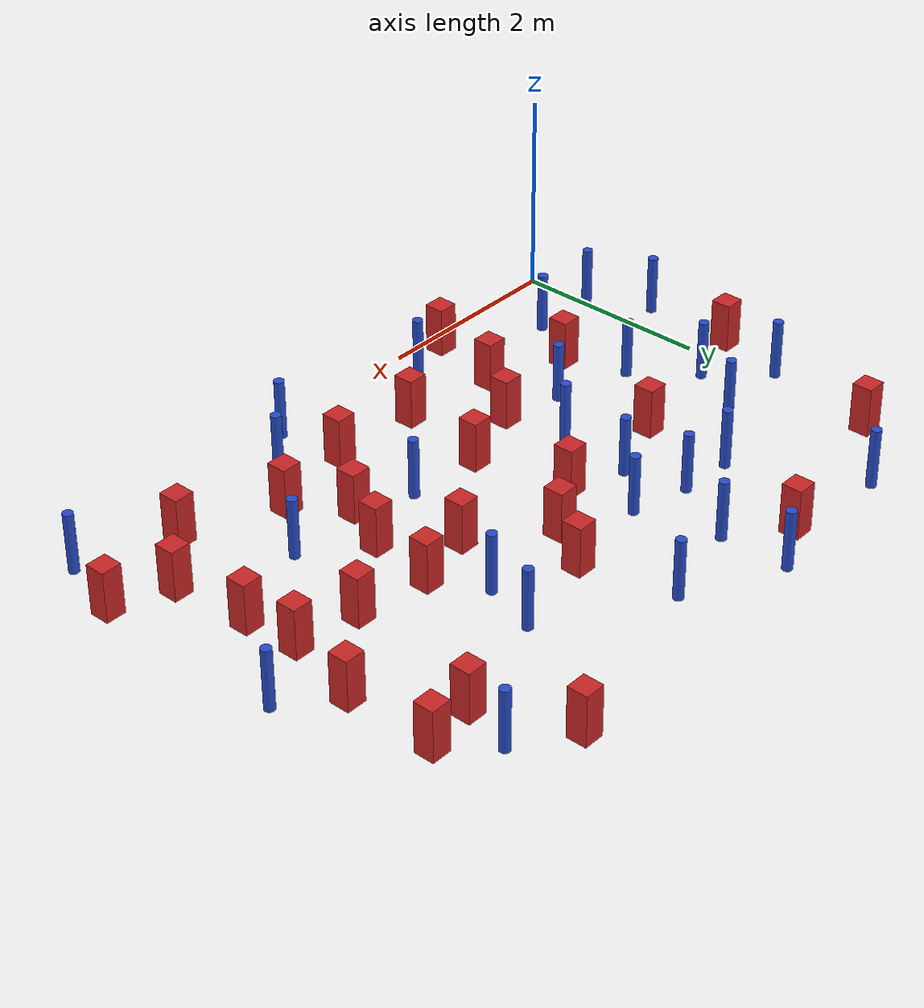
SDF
<sdf version="1.6">
 <model name="dense_92">
  <model name="pole_obstacle0">
   <static>true</static>
   <pose>3.60466851561 1.68815244617 -3.09024884793e-07 -7.19054271912e-07 -2.11315075122e-07 -1.93935509259e-07</pose>
   <link name="link">
    <pose>0 0 0.3 0 -0 0</pose>
    <inertial>
     <mass>1</mass>
     <inertia><ixx>0.145833</ixx><ixy>0</ixy><ixz>0</ixz><iyy>0.145833</iyy><iyz>0</iyz><izz>0.125</izz></inertia>
    </inertial>
    <collision name="collision">
     <geometry><cylinder><radius>0.05</radius><length>.6</length></cylinder></geometry>
    </collision>
    <visual name="visual">
     <geometry><cylinder><radius>0.05</radius><length>.6</length></cylinder></geometry>
     <material>
      <script><name>Gazebo/Blue</name><uri>file://media/materials/scripts/gazebo.material</uri></script>
     </material>
    </visual>
   </link>
  </model>
  <model name="square_post_obstacle0">
   <static>true</static>
   <pose>0.999847726643 1.23337984124 -4.36207812815e-07 3.75137919937e-06 9.77721102514e-07 2.47381364184e-05</pose>
   <link name="link">
    <pose>0 0 0.25 0 -0 0</pose>
    <inertial>
     <mass>100</mass>
     <inertia>
      <ixx>0.166667</ixx>
      <ixy>0</ixy>
      <ixz>0</ixz>
      <iyy>0.166667</iyy>
      <iyz>0</iyz>
      <izz>0.166667</izz>
     </inertia>
    </inertial>
    <collision name="collision"><geometry><box><size>.2 .2 .5</size></box></geometry></collision>
    <visual name="visual">
     <geometry><box><size>.2 .2 .5</size></box></geometry>
     <material>
      <script><name>Gazebo/Red</name><uri>file://media/materials/scripts/gazebo.material</uri></script>
     </material>
    </visual>
   </link>
  </model>
  <model name="pole_obstacle2">
   <static>true</static>
   <pose>0.819496799136 4.62784441274 -3.09024884793e-07 -7.19054271912e-07 -2.11315075129e-07 -1.93935509261e-07</pose>
   <link name="link">
    <pose>0 0 0.3 0 -0 0</pose>
    <inertial>
     <mass>1</mass>
     <inertia><ixx>0.145833</ixx><ixy>0</ixy><ixz>0</ixz><iyy>0.145833</iyy><iyz>0</iyz><izz>0.125</izz></inertia>
    </inertial>
    <collision name="collision">
     <geometry><cylinder><radius>0.05</radius><length>.6</length></cylinder></geometry>
    </collision>
    <visual name="visual">
     <geometry><cylinder><radius>0.05</radius><length>.6</length></cylinder></geometry>
     <material>
      <script><name>Gazebo/Blue</name><uri>file://media/materials/scripts/gazebo.material</uri></script>
     </material>
    </visual>
   </link>
  </model>
  <model name="square_post_obstacle3">
   <static>true</static>
   <pose>3.87906195297 2.48973368131 -4.36207812815e-07 3.75137919937e-06 9.77721102514e-07 2.47381364184e-05</pose>
   <link name="link">
    <pose>0 0 0.25 0 -0 0</pose>
    <inertial>
     <mass>100</mass>
     <inertia>
      <ixx>0.166667</ixx>
      <ixy>0</ixy>
      <ixz>0</ixz>
      <iyy>0.166667</iyy>
      <iyz>0</iyz>
      <izz>0.166667</izz>
     </inertia>
    </inertial>
    <collision name="collision"><geometry><box><size>.2 .2 .5</size></box></geometry></collision>
    <visual name="visual">
     <geometry><box><size>.2 .2 .5</size></box></geometry>
     <material>
      <script><name>Gazebo/Red</name><uri>file://media/materials/scripts/gazebo.material</uri></script>
     </material>
    </visual>
   </link>
  </model>
  <model name="square_post_obstacle4">
   <static>true</static>
   <pose>5.19409219351 2.53887665867 -4.36207812815e-07 3.75137919937e-06 9.77721102514e-07 2.47381364184e-05</pose>
   <link name="link">
    <pose>0 0 0.25 0 -0 0</pose>
    <inertial>
     <mass>100</mass>
     <inertia>
      <ixx>0.166667</ixx>
      <ixy>0</ixy>
      <ixz>0</ixz>
      <iyy>0.166667</iyy>
      <iyz>0</iyz>
      <izz>0.166667</izz>
     </inertia>
    </inertial>
    <collision name="collision"><geometry><box><size>.2 .2 .5</size></box></geometry></collision>
    <visual name="visual">
     <geometry><box><size>.2 .2 .5</size></box></geometry>
     <material>
      <script><name>Gazebo/Red</name><uri>file://media/materials/scripts/gazebo.material</uri></script>
     </material>
    </visual>
   </link>
  </model>
  <model name="square_post_obstacle12">
   <static>true</static>
   <pose>5.85844302051 1.91838656615 -4.36207812815e-07 3.75137919937e-06 9.77721102514e-07 2.47381364184e-05</pose>
   <link name="link">
    <pose>0 0 0.25 0 -0 0</pose>
    <inertial>
     <mass>100</mass>
     <inertia>
      <ixx>0.166667</ixx>
      <ixy>0</ixy>
      <ixz>0</ixz>
      <iyy>0.166667</iyy>
      <iyz>0</iyz>
      <izz>0.166667</izz>
     </inertia>
    </inertial>
    <collision name="collision"><geometry><box><size>.2 .2 .5</size></box></geometry></collision>
    <visual name="visual">
     <geometry><box><size>.2 .2 .5</size></box></geometry>
     <material>
      <script><name>Gazebo/Red</name><uri>file://media/materials/scripts/gazebo.material</uri></script>
     </material>
    </visual>
   </link>
  </model>
  <model name="square_post_obstacle13">
   <static>true</static>
   <pose>2.64534605135 2.66495597254 -4.36207812815e-07 3.75137919937e-06 9.77721102514e-07 2.47381364184e-05</pose>
   <link name="link">
    <pose>0 0 0.25 0 -0 0</pose>
    <inertial>
     <mass>100</mass>
     <inertia>
      <ixx>0.166667</ixx>
      <ixy>0</ixy>
      <ixz>0</ixz>
      <iyy>0.166667</iyy>
      <iyz>0</iyz>
      <izz>0.166667</izz>
     </inertia>
    </inertial>
    <collision name="collision"><geometry><box><size>.2 .2 .5</size></box></geometry></collision>
    <visual name="visual">
     <geometry><box><size>.2 .2 .5</size></box></geometry>
     <material>
      <script><name>Gazebo/Red</name><uri>file://media/materials/scripts/gazebo.material</uri></script>
     </material>
    </visual>
   </link>
  </model>
  <model name="square_post_obstacle15">
   <static>true</static>
   <pose>1.76671340534 0.958167843128 -4.36207812815e-07 3.75137919937e-06 9.77721102514e-07 2.47381364184e-05</pose>
   <link name="link">
    <pose>0 0 0.25 0 -0 0</pose>
    <inertial>
     <mass>100</mass>
     <inertia>
      <ixx>0.166667</ixx>
      <ixy>0</ixy>
      <ixz>0</ixz>
      <iyy>0.166667</iyy>
      <iyz>0</iyz>
      <izz>0.166667</izz>
     </inertia>
    </inertial>
    <collision name="collision"><geometry><box><size>.2 .2 .5</size></box></geometry></collision>
    <visual name="visual">
     <geometry><box><size>.2 .2 .5</size></box></geometry>
     <material>
      <script><name>Gazebo/Red</name><uri>file://media/materials/scripts/gazebo.material</uri></script>
     </material>
    </visual>
   </link>
  </model>
  <model name="pole_obstacle22">
   <static>true</static>
   <pose>5.62345927579 4.4928146941 -3.09024884793e-07 -7.19054271911e-07 -2.1131507516e-07 -1.93935509277e-07</pose>
   <link name="link">
    <pose>0 0 0.3 0 -0 0</pose>
    <inertial>
     <mass>1</mass>
     <inertia><ixx>0.145833</ixx><ixy>0</ixy><ixz>0</ixz><iyy>0.145833</iyy><iyz>0</iyz><izz>0.125</izz></inertia>
    </inertial>
    <collision name="collision">
     <geometry><cylinder><radius>0.05</radius><length>.6</length></cylinder></geometry>
    </collision>
    <visual name="visual">
     <geometry><cylinder><radius>0.05</radius><length>.6</length></cylinder></geometry>
     <material>
      <script><name>Gazebo/Blue</name><uri>file://media/materials/scripts/gazebo.material</uri></script>
     </material>
    </visual>
   </link>
  </model>
  <model name="pole_obstacle32">
   <static>true</static>
   <pose>2.02491180352 2.1015205341 -3.09024884793e-07 -7.19054271912e-07 -2.11315075149e-07 -1.93935509273e-07</pose>
   <link name="link">
    <pose>0 0 0.3 0 -0 0</pose>
    <inertial>
     <mass>1</mass>
     <inertia><ixx>0.145833</ixx><ixy>0</ixy><ixz>0</ixz><iyy>0.145833</iyy><iyz>0</iyz><izz>0.125</izz></inertia>
    </inertial>
    <collision name="collision">
     <geometry><cylinder><radius>0.05</radius><length>.6</length></cylinder></geometry>
    </collision>
    <visual name="visual">
     <geometry><cylinder><radius>0.05</radius><length>.6</length></cylinder></geometry>
     <material>
      <script><name>Gazebo/Blue</name><uri>file://media/materials/scripts/gazebo.material</uri></script>
     </material>
    </visual>
   </link>
  </model>
  <model name="pole_obstacle34">
   <static>true</static>
   <pose>4.11600173302 0.507920673641 -3.09024884793e-07 -7.19054271912e-07 -2.11315075121e-07 -1.93935509259e-07</pose>
   <link name="link">
    <pose>0 0 0.3 0 -0 0</pose>
    <inertial>
     <mass>1</mass>
     <inertia><ixx>0.145833</ixx><ixy>0</ixy><ixz>0</ixz><iyy>0.145833</iyy><iyz>0</iyz><izz>0.125</izz></inertia>
    </inertial>
    <collision name="collision">
     <geometry><cylinder><radius>0.05</radius><length>.6</length></cylinder></geometry>
    </collision>
    <visual name="visual">
     <geometry><cylinder><radius>0.05</radius><length>.6</length></cylinder></geometry>
     <material>
      <script><name>Gazebo/Blue</name><uri>file://media/materials/scripts/gazebo.material</uri></script>
     </material>
    </visual>
   </link>
  </model>
  <model name="pole_obstacle35">
   <static>true</static>
   <pose>6.30162977022 0.28714621884 -3.09024884793e-07 -7.19054271912e-07 -2.11315075135e-07 -1.93935509265e-07</pose>
   <link name="link">
    <pose>0 0 0.3 0 -0 0</pose>
    <inertial>
     <mass>1</mass>
     <inertia><ixx>0.145833</ixx><ixy>0</ixy><ixz>0</ixz><iyy>0.145833</iyy><iyz>0</iyz><izz>0.125</izz></inertia>
    </inertial>
    <collision name="collision">
     <geometry><cylinder><radius>0.05</radius><length>.6</length></cylinder></geometry>
    </collision>
    <visual name="visual">
     <geometry><cylinder><radius>0.05</radius><length>.6</length></cylinder></geometry>
     <material>
      <script><name>Gazebo/Blue</name><uri>file://media/materials/scripts/gazebo.material</uri></script>
     </material>
    </visual>
   </link>
  </model>
  <model name="pole_obstacle38">
   <static>true</static>
   <pose>-0.0360535526519 0.674733364668 -3.09024884793e-07 -7.19054271912e-07 -2.1131507514e-07 -1.93935509268e-07</pose>
   <link name="link">
    <pose>0 0 0.3 0 -0 0</pose>
    <inertial>
     <mass>1</mass>
     <inertia><ixx>0.145833</ixx><ixy>0</ixy><ixz>0</ixz><iyy>0.145833</iyy><iyz>0</iyz><izz>0.125</izz></inertia>
    </inertial>
    <collision name="collision">
     <geometry><cylinder><radius>0.05</radius><length>.6</length></cylinder></geometry>
    </collision>
    <visual name="visual">
     <geometry><cylinder><radius>0.05</radius><length>.6</length></cylinder></geometry>
     <material>
      <script><name>Gazebo/Blue</name><uri>file://media/materials/scripts/gazebo.material</uri></script>
     </material>
    </visual>
   </link>
  </model>
  <model name="pole_obstacle41">
   <static>true</static>
   <pose>-0.336554518417 1.26419817546 -3.09024884793e-07 -7.19054271912e-07 -2.11315075135e-07 -1.93935509265e-07</pose>
   <link name="link">
    <pose>0 0 0.3 0 -0 0</pose>
    <inertial>
     <mass>1</mass>
     <inertia><ixx>0.145833</ixx><ixy>0</ixy><ixz>0</ixz><iyy>0.145833</iyy><iyz>0</iyz><izz>0.125</izz></inertia>
    </inertial>
    <collision name="collision">
     <geometry><cylinder><radius>0.05</radius><length>.6</length></cylinder></geometry>
    </collision>
    <visual name="visual">
     <geometry><cylinder><radius>0.05</radius><length>.6</length></cylinder></geometry>
     <material>
      <script><name>Gazebo/Blue</name><uri>file://media/materials/scripts/gazebo.material</uri></script>
     </material>
    </visual>
   </link>
  </model>
  <model name="pole_obstacle43">
   <static>true</static>
   <pose>0.717372340981 2.98848043081 -3.09024884793e-07 -7.19054271912e-07 -2.11315075129e-07 -1.93935509263e-07</pose>
   <link name="link">
    <pose>0 0 0.3 0 -0 0</pose>
    <inertial>
     <mass>1</mass>
     <inertia><ixx>0.145833</ixx><ixy>0</ixy><ixz>0</ixz><iyy>0.145833</iyy><iyz>0</iyz><izz>0.125</izz></inertia>
    </inertial>
    <collision name="collision">
     <geometry><cylinder><radius>0.05</radius><length>.6</length></cylinder></geometry>
    </collision>
    <visual name="visual">
     <geometry><cylinder><radius>0.05</radius><length>.6</length></cylinder></geometry>
     <material>
      <script><name>Gazebo/Blue</name><uri>file://media/materials/scripts/gazebo.material</uri></script>
     </material>
    </visual>
   </link>
  </model>
  <model name="square_post_obstacle39">
   <static>true</static>
   <pose>1.59438663737 0.182219720311 -4.36207812815e-07 3.75137919937e-06 9.77721102514e-07 2.47381364184e-05</pose>
   <link name="link">
    <pose>0 0 0.25 0 -0 0</pose>
    <inertial>
     <mass>100</mass>
     <inertia>
      <ixx>0.166667</ixx>
      <ixy>0</ixy>
      <ixz>0</ixz>
      <iyy>0.166667</iyy>
      <iyz>0</iyz>
      <izz>0.166667</izz>
     </inertia>
    </inertial>
    <collision name="collision"><geometry><box><size>.2 .2 .5</size></box></geometry></collision>
    <visual name="visual">
     <geometry><box><size>.2 .2 .5</size></box></geometry>
     <material>
      <script><name>Gazebo/Red</name><uri>file://media/materials/scripts/gazebo.material</uri></script>
     </material>
    </visual>
   </link>
  </model>
  <model name="square_post_obstacle43">
   <static>true</static>
   <pose>6.00257894294 4.09511672997 -4.36207812815e-07 3.75137919937e-06 9.77721102514e-07 2.47381364184e-05</pose>
   <link name="link">
    <pose>0 0 0.25 0 -0 0</pose>
    <inertial>
     <mass>100</mass>
     <inertia>
      <ixx>0.166667</ixx>
      <ixy>0</ixy>
      <ixz>0</ixz>
      <iyy>0.166667</iyy>
      <iyz>0</iyz>
      <izz>0.166667</izz>
     </inertia>
    </inertial>
    <collision name="collision"><geometry><box><size>.2 .2 .5</size></box></geometry></collision>
    <visual name="visual">
     <geometry><box><size>.2 .2 .5</size></box></geometry>
     <material>
      <script><name>Gazebo/Red</name><uri>file://media/materials/scripts/gazebo.material</uri></script>
     </material>
    </visual>
   </link>
  </model>
  <model name="pole_obstacle59">
   <static>true</static>
   <pose>2.0804047754 0.33294601448 -3.09024884793e-07 -7.19054271912e-07 -2.1131507512e-07 -1.93935509259e-07</pose>
   <link name="link">
    <pose>0 0 0.3 0 -0 0</pose>
    <inertial>
     <mass>1</mass>
     <inertia><ixx>0.145833</ixx><ixy>0</ixy><ixz>0</ixz><iyy>0.145833</iyy><iyz>0</iyz><izz>0.125</izz></inertia>
    </inertial>
    <collision name="collision">
     <geometry><cylinder><radius>0.05</radius><length>.6</length></cylinder></geometry>
    </collision>
    <visual name="visual">
     <geometry><cylinder><radius>0.05</radius><length>.6</length></cylinder></geometry>
     <material>
      <script><name>Gazebo/Blue</name><uri>file://media/materials/scripts/gazebo.material</uri></script>
     </material>
    </visual>
   </link>
  </model>
  <model name="square_post_obstacle49">
   <static>true</static>
   <pose>0.0841019868554 4.06808306231 -4.36207812815e-07 3.75137919937e-06 9.77721102514e-07 2.47381364184e-05</pose>
   <link name="link">
    <pose>0 0 0.25 0 -0 0</pose>
    <inertial>
     <mass>100</mass>
     <inertia>
      <ixx>0.166667</ixx>
      <ixy>0</ixy>
      <ixz>0</ixz>
      <iyy>0.166667</iyy>
      <iyz>0</iyz>
      <izz>0.166667</izz>
     </inertia>
    </inertial>
    <collision name="collision"><geometry><box><size>.2 .2 .5</size></box></geometry></collision>
    <visual name="visual">
     <geometry><box><size>.2 .2 .5</size></box></geometry>
     <material>
      <script><name>Gazebo/Red</name><uri>file://media/materials/scripts/gazebo.material</uri></script>
     </material>
    </visual>
   </link>
  </model>
  <model name="square_post_obstacle63">
   <static>true</static>
   <pose>5.93387154902 1.15310117434 -4.36207812815e-07 3.75137919937e-06 9.77721102514e-07 2.47381364184e-05</pose>
   <link name="link">
    <pose>0 0 0.25 0 -0 0</pose>
    <inertial>
     <mass>100</mass>
     <inertia>
      <ixx>0.166667</ixx>
      <ixy>0</ixy>
      <ixz>0</ixz>
      <iyy>0.166667</iyy>
      <iyz>0</iyz>
      <izz>0.166667</izz>
     </inertia>
    </inertial>
    <collision name="collision"><geometry><box><size>.2 .2 .5</size></box></geometry></collision>
    <visual name="visual">
     <geometry><box><size>.2 .2 .5</size></box></geometry>
     <material>
      <script><name>Gazebo/Red</name><uri>file://media/materials/scripts/gazebo.material</uri></script>
     </material>
    </visual>
   </link>
  </model>
  <model name="pole_obstacle76">
   <static>true</static>
   <pose>2.53124457961 3.29740542133 -3.09024884793e-07 -7.19054271912e-07 -2.11315075144e-07 -1.93935509271e-07</pose>
   <link name="link">
    <pose>0 0 0.3 0 -0 0</pose>
    <inertial>
     <mass>1</mass>
     <inertia><ixx>0.145833</ixx><ixy>0</ixy><ixz>0</ixz><iyy>0.145833</iyy><iyz>0</iyz><izz>0.125</izz></inertia>
    </inertial>
    <collision name="collision">
     <geometry><cylinder><radius>0.05</radius><length>.6</length></cylinder></geometry>
    </collision>
    <visual name="visual">
     <geometry><cylinder><radius>0.05</radius><length>.6</length></cylinder></geometry>
     <material>
      <script><name>Gazebo/Blue</name><uri>file://media/materials/scripts/gazebo.material</uri></script>
     </material>
    </visual>
   </link>
  </model>
  <model name="pole_obstacle77">
   <static>true</static>
   <pose>1.54219079102 1.61640220857 -3.09024884793e-07 -7.19054271912e-07 -2.1131507513e-07 -1.93935509263e-07</pose>
   <link name="link">
    <pose>0 0 0.3 0 -0 0</pose>
    <inertial>
     <mass>1</mass>
     <inertia><ixx>0.145833</ixx><ixy>0</ixy><ixz>0</ixz><iyy>0.145833</iyy><iyz>0</iyz><izz>0.125</izz></inertia>
    </inertial>
    <collision name="collision">
     <geometry><cylinder><radius>0.05</radius><length>.6</length></cylinder></geometry>
    </collision>
    <visual name="visual">
     <geometry><cylinder><radius>0.05</radius><length>.6</length></cylinder></geometry>
     <material>
      <script><name>Gazebo/Blue</name><uri>file://media/materials/scripts/gazebo.material</uri></script>
     </material>
    </visual>
   </link>
  </model>
  <model name="square_post_obstacle72">
   <static>true</static>
   <pose>2.72751418783 0.834391172648 -4.36207812815e-07 3.75137919937e-06 9.77721102514e-07 2.47381364184e-05</pose>
   <link name="link">
    <pose>0 0 0.25 0 -0 0</pose>
    <inertial>
     <mass>100</mass>
     <inertia>
      <ixx>0.166667</ixx>
      <ixy>0</ixy>
      <ixz>0</ixz>
      <iyy>0.166667</iyy>
      <iyz>0</iyz>
      <izz>0.166667</izz>
     </inertia>
    </inertial>
    <collision name="collision"><geometry><box><size>.2 .2 .5</size></box></geometry></collision>
    <visual name="visual">
     <geometry><box><size>.2 .2 .5</size></box></geometry>
     <material>
      <script><name>Gazebo/Red</name><uri>file://media/materials/scripts/gazebo.material</uri></script>
     </material>
    </visual>
   </link>
  </model>
  <model name="pole_obstacle86">
   <static>true</static>
   <pose>6.46464674473 2.80618691276 -3.09024884793e-07 -7.19054271912e-07 -2.11315075144e-07 -1.93935509269e-07</pose>
   <link name="link">
    <pose>0 0 0.3 0 -0 0</pose>
    <inertial>
     <mass>1</mass>
     <inertia><ixx>0.145833</ixx><ixy>0</ixy><ixz>0</ixz><iyy>0.145833</iyy><iyz>0</iyz><izz>0.125</izz></inertia>
    </inertial>
    <collision name="collision">
     <geometry><cylinder><radius>0.05</radius><length>.6</length></cylinder></geometry>
    </collision>
    <visual name="visual">
     <geometry><cylinder><radius>0.05</radius><length>.6</length></cylinder></geometry>
     <material>
      <script><name>Gazebo/Blue</name><uri>file://media/materials/scripts/gazebo.material</uri></script>
     </material>
    </visual>
   </link>
  </model>
  <model name="square_post_obstacle74">
   <static>true</static>
   <pose>4.16488872355 1.49642930319 -4.36207812815e-07 3.75137919937e-06 9.77721102514e-07 2.47381364184e-05</pose>
   <link name="link">
    <pose>0 0 0.25 0 -0 0</pose>
    <inertial>
     <mass>100</mass>
     <inertia>
      <ixx>0.166667</ixx>
      <ixy>0</ixy>
      <ixz>0</ixz>
      <iyy>0.166667</iyy>
      <iyz>0</iyz>
      <izz>0.166667</izz>
     </inertia>
    </inertial>
    <collision name="collision"><geometry><box><size>.2 .2 .5</size></box></geometry></collision>
    <visual name="visual">
     <geometry><box><size>.2 .2 .5</size></box></geometry>
     <material>
      <script><name>Gazebo/Red</name><uri>file://media/materials/scripts/gazebo.material</uri></script>
     </material>
    </visual>
   </link>
  </model>
  <model name="square_post_obstacle75">
   <static>true</static>
   <pose>2.87497273468 1.75253294961 -4.36207812815e-07 3.75137919937e-06 9.77721102514e-07 2.47381364184e-05</pose>
   <link name="link">
    <pose>0 0 0.25 0 -0 0</pose>
    <inertial>
     <mass>100</mass>
     <inertia>
      <ixx>0.166667</ixx>
      <ixy>0</ixy>
      <ixz>0</ixz>
      <iyy>0.166667</iyy>
      <iyz>0</iyz>
      <izz>0.166667</izz>
     </inertia>
    </inertial>
    <collision name="collision"><geometry><box><size>.2 .2 .5</size></box></geometry></collision>
    <visual name="visual">
     <geometry><box><size>.2 .2 .5</size></box></geometry>
     <material>
      <script><name>Gazebo/Red</name><uri>file://media/materials/scripts/gazebo.material</uri></script>
     </material>
    </visual>
   </link>
  </model>
  <model name="pole_obstacle92">
   <static>true</static>
   <pose>0.648479437026 0.670236777049 -3.09024884793e-07 -7.19054271912e-07 -2.11315075137e-07 -1.93935509266e-07</pose>
   <link name="link">
    <pose>0 0 0.3 0 -0 0</pose>
    <inertial>
     <mass>1</mass>
     <inertia><ixx>0.145833</ixx><ixy>0</ixy><ixz>0</ixz><iyy>0.145833</iyy><iyz>0</iyz><izz>0.125</izz></inertia>
    </inertial>
    <collision name="collision">
     <geometry><cylinder><radius>0.05</radius><length>.6</length></cylinder></geometry>
    </collision>
    <visual name="visual">
     <geometry><cylinder><radius>0.05</radius><length>.6</length></cylinder></geometry>
     <material>
      <script><name>Gazebo/Blue</name><uri>file://media/materials/scripts/gazebo.material</uri></script>
     </material>
    </visual>
   </link>
  </model>
  <model name="square_post_obstacle89">
   <static>true</static>
   <pose>4.39092019486 1.97708388863 -4.36207812815e-07 3.75137919937e-06 9.77721102514e-07 2.47381364184e-05</pose>
   <link name="link">
    <pose>0 0 0.25 0 -0 0</pose>
    <inertial>
     <mass>100</mass>
     <inertia>
      <ixx>0.166667</ixx>
      <ixy>0</ixy>
      <ixz>0</ixz>
      <iyy>0.166667</iyy>
      <iyz>0</iyz>
      <izz>0.166667</izz>
     </inertia>
    </inertial>
    <collision name="collision"><geometry><box><size>.2 .2 .5</size></box></geometry></collision>
    <visual name="visual">
     <geometry><box><size>.2 .2 .5</size></box></geometry>
     <material>
      <script><name>Gazebo/Red</name><uri>file://media/materials/scripts/gazebo.material</uri></script>
     </material>
    </visual>
   </link>
  </model>
  <model name="square_post_obstacle90">
   <static>true</static>
   <pose>6.00355162635 3.20377724136 -4.36207812815e-07 3.75137919937e-06 9.77721102514e-07 2.47381364184e-05</pose>
   <link name="link">
    <pose>0 0 0.25 0 -0 0</pose>
    <inertial>
     <mass>100</mass>
     <inertia>
      <ixx>0.166667</ixx>
      <ixy>0</ixy>
      <ixz>0</ixz>
      <iyy>0.166667</iyy>
      <iyz>0</iyz>
      <izz>0.166667</izz>
     </inertia>
    </inertial>
    <collision name="collision"><geometry><box><size>.2 .2 .5</size></box></geometry></collision>
    <visual name="visual">
     <geometry><box><size>.2 .2 .5</size></box></geometry>
     <material>
      <script><name>Gazebo/Red</name><uri>file://media/materials/scripts/gazebo.material</uri></script>
     </material>
    </visual>
   </link>
  </model>
  <model name="square_post_obstacle95">
   <static>true</static>
   <pose>-0.287415028788 2.20524744623 -4.36207812815e-07 3.75137919937e-06 9.77721102514e-07 2.47381364184e-05</pose>
   <link name="link">
    <pose>0 0 0.25 0 -0 0</pose>
    <inertial>
     <mass>100</mass>
     <inertia>
      <ixx>0.166667</ixx>
      <ixy>0</ixy>
      <ixz>0</ixz>
      <iyy>0.166667</iyy>
      <iyz>0</iyz>
      <izz>0.166667</izz>
     </inertia>
    </inertial>
    <collision name="collision"><geometry><box><size>.2 .2 .5</size></box></geometry></collision>
    <visual name="visual">
     <geometry><box><size>.2 .2 .5</size></box></geometry>
     <material>
      <script><name>Gazebo/Red</name><uri>file://media/materials/scripts/gazebo.material</uri></script>
     </material>
    </visual>
   </link>
  </model>
  <model name="pole_obstacle107">
   <static>true</static>
   <pose>2.34064452299 4.10383345779 -3.09024884793e-07 -7.19054271912e-07 -2.11315075134e-07 -1.93935509266e-07</pose>
   <link name="link">
    <pose>0 0 0.3 0 -0 0</pose>
    <inertial>
     <mass>1</mass>
     <inertia><ixx>0.145833</ixx><ixy>0</ixy><ixz>0</ixz><iyy>0.145833</iyy><iyz>0</iyz><izz>0.125</izz></inertia>
    </inertial>
    <collision name="collision">
     <geometry><cylinder><radius>0.05</radius><length>.6</length></cylinder></geometry>
    </collision>
    <visual name="visual">
     <geometry><cylinder><radius>0.05</radius><length>.6</length></cylinder></geometry>
     <material>
      <script><name>Gazebo/Blue</name><uri>file://media/materials/scripts/gazebo.material</uri></script>
     </material>
    </visual>
   </link>
  </model>
  <model name="pole_obstacle114">
   <static>true</static>
   <pose>3.24895683945 4.33402686463 -3.09024884793e-07 -7.19054271912e-07 -2.11315075134e-07 -1.93935509266e-07</pose>
   <link name="link">
    <pose>0 0 0.3 0 -0 0</pose>
    <inertial>
     <mass>1</mass>
     <inertia><ixx>0.145833</ixx><ixy>0</ixy><ixz>0</ixz><iyy>0.145833</iyy><iyz>0</iyz><izz>0.125</izz></inertia>
    </inertial>
    <collision name="collision">
     <geometry><cylinder><radius>0.05</radius><length>.6</length></cylinder></geometry>
    </collision>
    <visual name="visual">
     <geometry><cylinder><radius>0.05</radius><length>.6</length></cylinder></geometry>
     <material>
      <script><name>Gazebo/Blue</name><uri>file://media/materials/scripts/gazebo.material</uri></script>
     </material>
    </visual>
   </link>
  </model>
  <model name="pole_obstacle117">
   <static>true</static>
   <pose>4.93155066983 1.53489315904 -3.09024884793e-07 -7.19054271912e-07 -2.11315075124e-07 -1.93935509261e-07</pose>
   <link name="link">
    <pose>0 0 0.3 0 -0 0</pose>
    <inertial>
     <mass>1</mass>
     <inertia><ixx>0.145833</ixx><ixy>0</ixy><ixz>0</ixz><iyy>0.145833</iyy><iyz>0</iyz><izz>0.125</izz></inertia>
    </inertial>
    <collision name="collision">
     <geometry><cylinder><radius>0.05</radius><length>.6</length></cylinder></geometry>
    </collision>
    <visual name="visual">
     <geometry><cylinder><radius>0.05</radius><length>.6</length></cylinder></geometry>
     <material>
      <script><name>Gazebo/Blue</name><uri>file://media/materials/scripts/gazebo.material</uri></script>
     </material>
    </visual>
   </link>
  </model>
  <model name="square_post_obstacle120">
   <static>true</static>
   <pose>3.48128010855 3.45337620537 -4.36207812815e-07 3.75137919937e-06 9.77721102514e-07 2.47381364184e-05</pose>
   <link name="link">
    <pose>0 0 0.25 0 -0 0</pose>
    <inertial>
     <mass>100</mass>
     <inertia>
      <ixx>0.166667</ixx>
      <ixy>0</ixy>
      <ixz>0</ixz>
      <iyy>0.166667</iyy>
      <iyz>0</iyz>
      <izz>0.166667</izz>
     </inertia>
    </inertial>
    <collision name="collision"><geometry><box><size>.2 .2 .5</size></box></geometry></collision>
    <visual name="visual">
     <geometry><box><size>.2 .2 .5</size></box></geometry>
     <material>
      <script><name>Gazebo/Red</name><uri>file://media/materials/scripts/gazebo.material</uri></script>
     </material>
    </visual>
   </link>
  </model>
  <model name="pole_obstacle122">
   <static>true</static>
   <pose>1.41979557181 3.46544027278 -3.09024884793e-07 -7.19054271912e-07 -2.11315075132e-07 -1.93935509263e-07</pose>
   <link name="link">
    <pose>0 0 0.3 0 -0 0</pose>
    <inertial>
     <mass>1</mass>
     <inertia><ixx>0.145833</ixx><ixy>0</ixy><ixz>0</ixz><iyy>0.145833</iyy><iyz>0</iyz><izz>0.125</izz></inertia>
    </inertial>
    <collision name="collision">
     <geometry><cylinder><radius>0.05</radius><length>.6</length></cylinder></geometry>
    </collision>
    <visual name="visual">
     <geometry><cylinder><radius>0.05</radius><length>.6</length></cylinder></geometry>
     <material>
      <script><name>Gazebo/Blue</name><uri>file://media/materials/scripts/gazebo.material</uri></script>
     </material>
    </visual>
   </link>
  </model>
  <model name="pole_obstacle125">
   <static>true</static>
   <pose>2.3202746071 4.77866252238 -3.09024884793e-07 -7.19054271912e-07 -2.11315075134e-07 -1.93935509266e-07</pose>
   <link name="link">
    <pose>0 0 0.3 0 -0 0</pose>
    <inertial>
     <mass>1</mass>
     <inertia><ixx>0.145833</ixx><ixy>0</ixy><ixz>0</ixz><iyy>0.145833</iyy><iyz>0</iyz><izz>0.125</izz></inertia>
    </inertial>
    <collision name="collision">
     <geometry><cylinder><radius>0.05</radius><length>.6</length></cylinder></geometry>
    </collision>
    <visual name="visual">
     <geometry><cylinder><radius>0.05</radius><length>.6</length></cylinder></geometry>
     <material>
      <script><name>Gazebo/Blue</name><uri>file://media/materials/scripts/gazebo.material</uri></script>
     </material>
    </visual>
   </link>
  </model>
  <model name="square_post_obstacle123">
   <static>true</static>
   <pose>3.62911964179 0.800626726803 -4.36207812815e-07 3.75137919937e-06 9.77721102514e-07 2.47381364184e-05</pose>
   <link name="link">
    <pose>0 0 0.25 0 -0 0</pose>
    <inertial>
     <mass>100</mass>
     <inertia>
      <ixx>0.166667</ixx>
      <ixy>0</ixy>
      <ixz>0</ixz>
      <iyy>0.166667</iyy>
      <iyz>0</iyz>
      <izz>0.166667</izz>
     </inertia>
    </inertial>
    <collision name="collision"><geometry><box><size>.2 .2 .5</size></box></geometry></collision>
    <visual name="visual">
     <geometry><box><size>.2 .2 .5</size></box></geometry>
     <material>
      <script><name>Gazebo/Red</name><uri>file://media/materials/scripts/gazebo.material</uri></script>
     </material>
    </visual>
   </link>
  </model>
  <model name="square_post_obstacle125">
   <static>true</static>
   <pose>3.20229484599 3.01561032146 -4.36207812815e-07 3.75137919937e-06 9.77721102514e-07 2.47381364184e-05</pose>
   <link name="link">
    <pose>0 0 0.25 0 -0 0</pose>
    <inertial>
     <mass>100</mass>
     <inertia>
      <ixx>0.166667</ixx>
      <ixy>0</ixy>
      <ixz>0</ixz>
      <iyy>0.166667</iyy>
      <iyz>0</iyz>
      <izz>0.166667</izz>
     </inertia>
    </inertial>
    <collision name="collision"><geometry><box><size>.2 .2 .5</size></box></geometry></collision>
    <visual name="visual">
     <geometry><box><size>.2 .2 .5</size></box></geometry>
     <material>
      <script><name>Gazebo/Red</name><uri>file://media/materials/scripts/gazebo.material</uri></script>
     </material>
    </visual>
   </link>
  </model>
  <model name="pole_obstacle131">
   <static>true</static>
   <pose>1.95421848574 3.43744038498 -3.09024884793e-07 -7.19054271912e-07 -2.11315075136e-07 -1.93935509265e-07</pose>
   <link name="link">
    <pose>0 0 0.3 0 -0 0</pose>
    <inertial>
     <mass>1</mass>
     <inertia><ixx>0.145833</ixx><ixy>0</ixy><ixz>0</ixz><iyy>0.145833</iyy><iyz>0</iyz><izz>0.125</izz></inertia>
    </inertial>
    <collision name="collision">
     <geometry><cylinder><radius>0.05</radius><length>.6</length></cylinder></geometry>
    </collision>
    <visual name="visual">
     <geometry><cylinder><radius>0.05</radius><length>.6</length></cylinder></geometry>
     <material>
      <script><name>Gazebo/Blue</name><uri>file://media/materials/scripts/gazebo.material</uri></script>
     </material>
    </visual>
   </link>
  </model>
  <model name="square_post_obstacle127">
   <static>true</static>
   <pose>1.41349608575 2.58986551488 -4.36207812815e-07 3.75137919937e-06 9.77721102514e-07 2.47381364184e-05</pose>
   <link name="link">
    <pose>0 0 0.25 0 -0 0</pose>
    <inertial>
     <mass>100</mass>
     <inertia>
      <ixx>0.166667</ixx>
      <ixy>0</ixy>
      <ixz>0</ixz>
      <iyy>0.166667</iyy>
      <iyz>0</iyz>
      <izz>0.166667</izz>
     </inertia>
    </inertial>
    <collision name="collision"><geometry><box><size>.2 .2 .5</size></box></geometry></collision>
    <visual name="visual">
     <geometry><box><size>.2 .2 .5</size></box></geometry>
     <material>
      <script><name>Gazebo/Red</name><uri>file://media/materials/scripts/gazebo.material</uri></script>
     </material>
    </visual>
   </link>
  </model>
  <model name="pole_obstacle133">
   <static>true</static>
   <pose>0.336181300725 2.39105926085 -3.09024884793e-07 -7.19054271912e-07 -2.11315075129e-07 -1.93935509263e-07</pose>
   <link name="link">
    <pose>0 0 0.3 0 -0 0</pose>
    <inertial>
     <mass>1</mass>
     <inertia><ixx>0.145833</ixx><ixy>0</ixy><ixz>0</ixz><iyy>0.145833</iyy><iyz>0</iyz><izz>0.125</izz></inertia>
    </inertial>
    <collision name="collision">
     <geometry><cylinder><radius>0.05</radius><length>.6</length></cylinder></geometry>
    </collision>
    <visual name="visual">
     <geometry><cylinder><radius>0.05</radius><length>.6</length></cylinder></geometry>
     <material>
      <script><name>Gazebo/Blue</name><uri>file://media/materials/scripts/gazebo.material</uri></script>
     </material>
    </visual>
   </link>
  </model>
  <model name="pole_obstacle134">
   <static>true</static>
   <pose>-0.138092802408 2.90990151172 -3.09024884848e-07 -7.19054271902e-07 -2.11315075202e-07 -1.93935509287e-07</pose>
   <link name="link">
    <pose>0 0 0.3 0 -0 0</pose>
    <inertial>
     <mass>1</mass>
     <inertia><ixx>0.145833</ixx><ixy>0</ixy><ixz>0</ixz><iyy>0.145833</iyy><iyz>0</iyz><izz>0.125</izz></inertia>
    </inertial>
    <collision name="collision">
     <geometry><cylinder><radius>0.05</radius><length>.6</length></cylinder></geometry>
    </collision>
    <visual name="visual">
     <geometry><cylinder><radius>0.05</radius><length>.6</length></cylinder></geometry>
     <material>
      <script><name>Gazebo/Blue</name><uri>file://media/materials/scripts/gazebo.material</uri></script>
     </material>
    </visual>
   </link>
  </model>
  <model name="pole_obstacle140">
   <static>true</static>
   <pose>0.77984480857 1.83091715458 -3.09024884793e-07 -7.19054271912e-07 -2.11315075135e-07 -1.93935509266e-07</pose>
   <link name="link">
    <pose>0 0 0.3 0 -0 0</pose>
    <inertial>
     <mass>1</mass>
     <inertia><ixx>0.145833</ixx><ixy>0</ixy><ixz>0</ixz><iyy>0.145833</iyy><iyz>0</iyz><izz>0.125</izz></inertia>
    </inertial>
    <collision name="collision">
     <geometry><cylinder><radius>0.05</radius><length>.6</length></cylinder></geometry>
    </collision>
    <visual name="visual">
     <geometry><cylinder><radius>0.05</radius><length>.6</length></cylinder></geometry>
     <material>
      <script><name>Gazebo/Blue</name><uri>file://media/materials/scripts/gazebo.material</uri></script>
     </material>
    </visual>
   </link>
  </model>
  <model name="pole_obstacle144">
   <static>true</static>
   <pose>2.10816100386 2.85783977278 -3.09024884793e-07 -7.19054271912e-07 -2.11315075144e-07 -1.93935509271e-07</pose>
   <link name="link">
    <pose>0 0 0.3 0 -0 0</pose>
    <inertial>
     <mass>1</mass>
     <inertia><ixx>0.145833</ixx><ixy>0</ixy><ixz>0</ixz><iyy>0.145833</iyy><iyz>0</iyz><izz>0.125</izz></inertia>
    </inertial>
    <collision name="collision">
     <geometry><cylinder><radius>0.05</radius><length>.6</length></cylinder></geometry>
    </collision>
    <visual name="visual">
     <geometry><cylinder><radius>0.05</radius><length>.6</length></cylinder></geometry>
     <material>
      <script><name>Gazebo/Blue</name><uri>file://media/materials/scripts/gazebo.material</uri></script>
     </material>
    </visual>
   </link>
  </model>
  <model name="square_post_obstacle147">
   <static>true</static>
   <pose>5.81716630669 2.44873523459 -4.36207812815e-07 3.75137919937e-06 9.77721102514e-07 2.47381364184e-05</pose>
   <link name="link">
    <pose>0 0 0.25 0 -0 0</pose>
    <inertial>
     <mass>100</mass>
     <inertia>
      <ixx>0.166667</ixx>
      <ixy>0</ixy>
      <ixz>0</ixz>
      <iyy>0.166667</iyy>
      <iyz>0</iyz>
      <izz>0.166667</izz>
     </inertia>
    </inertial>
    <collision name="collision"><geometry><box><size>.2 .2 .5</size></box></geometry></collision>
    <visual name="visual">
     <geometry><box><size>.2 .2 .5</size></box></geometry>
     <material>
      <script><name>Gazebo/Red</name><uri>file://media/materials/scripts/gazebo.material</uri></script>
     </material>
    </visual>
   </link>
  </model>
  <model name="pole_obstacle155">
   <static>true</static>
   <pose>4.37328675213 3.65526643042 -3.09024884793e-07 -7.19054271912e-07 -2.11315075144e-07 -1.93935509269e-07</pose>
   <link name="link">
    <pose>0 0 0.3 0 -0 0</pose>
    <inertial>
     <mass>1</mass>
     <inertia><ixx>0.145833</ixx><ixy>0</ixy><ixz>0</ixz><iyy>0.145833</iyy><iyz>0</iyz><izz>0.125</izz></inertia>
    </inertial>
    <collision name="collision">
     <geometry><cylinder><radius>0.05</radius><length>.6</length></cylinder></geometry>
    </collision>
    <visual name="visual">
     <geometry><cylinder><radius>0.05</radius><length>.6</length></cylinder></geometry>
     <material>
      <script><name>Gazebo/Blue</name><uri>file://media/materials/scripts/gazebo.material</uri></script>
     </material>
    </visual>
   </link>
  </model>
  <model name="square_post_obstacle167">
   <static>true</static>
   <pose>2.16139309972 1.5004934368 -4.36207812815e-07 3.75137919937e-06 9.77721102514e-07 2.47381364184e-05</pose>
   <link name="link">
    <pose>0 0 0.25 0 -0 0</pose>
    <inertial>
     <mass>100</mass>
     <inertia>
      <ixx>0.166667</ixx>
      <ixy>0</ixy>
      <ixz>0</ixz>
      <iyy>0.166667</iyy>
      <iyz>0</iyz>
      <izz>0.166667</izz>
     </inertia>
    </inertial>
    <collision name="collision"><geometry><box><size>.2 .2 .5</size></box></geometry></collision>
    <visual name="visual">
     <geometry><box><size>.2 .2 .5</size></box></geometry>
     <material>
      <script><name>Gazebo/Red</name><uri>file://media/materials/scripts/gazebo.material</uri></script>
     </material>
    </visual>
   </link>
  </model>
  <model name="pole_obstacle169">
   <static>true</static>
   <pose>3.70067098473 0.122814528541 -3.09024884793e-07 -7.19054271912e-07 -2.11315075129e-07 -1.93935509263e-07</pose>
   <link name="link">
    <pose>0 0 0.3 0 -0 0</pose>
    <inertial>
     <mass>1</mass>
     <inertia><ixx>0.145833</ixx><ixy>0</ixy><ixz>0</ixz><iyy>0.145833</iyy><iyz>0</iyz><izz>0.125</izz></inertia>
    </inertial>
    <collision name="collision">
     <geometry><cylinder><radius>0.05</radius><length>.6</length></cylinder></geometry>
    </collision>
    <visual name="visual">
     <geometry><cylinder><radius>0.05</radius><length>.6</length></cylinder></geometry>
     <material>
      <script><name>Gazebo/Blue</name><uri>file://media/materials/scripts/gazebo.material</uri></script>
     </material>
    </visual>
   </link>
  </model>
  <model name="square_post_obstacle178">
   <static>true</static>
   <pose>6.49177768688 0.943278779598 -4.36207812815e-07 3.75137919937e-06 9.77721102514e-07 2.47381364184e-05</pose>
   <link name="link">
    <pose>0 0 0.25 0 -0 0</pose>
    <inertial>
     <mass>100</mass>
     <inertia>
      <ixx>0.166667</ixx>
      <ixy>0</ixy>
      <ixz>0</ixz>
      <iyy>0.166667</iyy>
      <iyz>0</iyz>
      <izz>0.166667</izz>
     </inertia>
    </inertial>
    <collision name="collision"><geometry><box><size>.2 .2 .5</size></box></geometry></collision>
    <visual name="visual">
     <geometry><box><size>.2 .2 .5</size></box></geometry>
     <material>
      <script><name>Gazebo/Red</name><uri>file://media/materials/scripts/gazebo.material</uri></script>
     </material>
    </visual>
   </link>
  </model>
  <model name="square_post_obstacle185">
   <static>true</static>
   <pose>4.49709539497 0.993040703194 -4.36207812815e-07 3.75137919937e-06 9.77721102514e-07 2.47381364184e-05</pose>
   <link name="link">
    <pose>0 0 0.25 0 -0 0</pose>
    <inertial>
     <mass>100</mass>
     <inertia>
      <ixx>0.166667</ixx>
      <ixy>0</ixy>
      <ixz>0</ixz>
      <iyy>0.166667</iyy>
      <iyz>0</iyz>
      <izz>0.166667</izz>
     </inertia>
    </inertial>
    <collision name="collision"><geometry><box><size>.2 .2 .5</size></box></geometry></collision>
    <visual name="visual">
     <geometry><box><size>.2 .2 .5</size></box></geometry>
     <material>
      <script><name>Gazebo/Red</name><uri>file://media/materials/scripts/gazebo.material</uri></script>
     </material>
    </visual>
   </link>
  </model>
  <model name="square_post_obstacle191">
   <static>true</static>
   <pose>5.10950995972 4.84954945624 -4.36207812815e-07 3.75137919937e-06 9.77721102514e-07 2.47381364184e-05</pose>
   <link name="link">
    <pose>0 0 0.25 0 -0 0</pose>
    <inertial>
     <mass>100</mass>
     <inertia>
      <ixx>0.166667</ixx>
      <ixy>0</ixy>
      <ixz>0</ixz>
      <iyy>0.166667</iyy>
      <iyz>0</iyz>
      <izz>0.166667</izz>
     </inertia>
    </inertial>
    <collision name="collision"><geometry><box><size>.2 .2 .5</size></box></geometry></collision>
    <visual name="visual">
     <geometry><box><size>.2 .2 .5</size></box></geometry>
     <material>
      <script><name>Gazebo/Red</name><uri>file://media/materials/scripts/gazebo.material</uri></script>
     </material>
    </visual>
   </link>
  </model>
  <model name="square_post_obstacle193">
   <static>true</static>
   <pose>5.49332477675 4.00608089999 -4.36207812815e-07 3.75137919937e-06 9.77721102514e-07 2.47381364184e-05</pose>
   <link name="link">
    <pose>0 0 0.25 0 -0 0</pose>
    <inertial>
     <mass>100</mass>
     <inertia>
      <ixx>0.166667</ixx>
      <ixy>0</ixy>
      <ixz>0</ixz>
      <iyy>0.166667</iyy>
      <iyz>0</iyz>
      <izz>0.166667</izz>
     </inertia>
    </inertial>
    <collision name="collision"><geometry><box><size>.2 .2 .5</size></box></geometry></collision>
    <visual name="visual">
     <geometry><box><size>.2 .2 .5</size></box></geometry>
     <material>
      <script><name>Gazebo/Red</name><uri>file://media/materials/scripts/gazebo.material</uri></script>
     </material>
    </visual>
   </link>
  </model>
  <model name="square_post_obstacle203">
   <static>true</static>
   <pose>5.41511135756 0.629608630126 -4.36207812815e-07 3.75137919937e-06 9.77721102514e-07 2.47381364184e-05</pose>
   <link name="link">
    <pose>0 0 0.25 0 -0 0</pose>
    <inertial>
     <mass>100</mass>
     <inertia>
      <ixx>0.166667</ixx>
      <ixy>0</ixy>
      <ixz>0</ixz>
      <iyy>0.166667</iyy>
      <iyz>0</iyz>
      <izz>0.166667</izz>
     </inertia>
    </inertial>
    <collision name="collision"><geometry><box><size>.2 .2 .5</size></box></geometry></collision>
    <visual name="visual">
     <geometry><box><size>.2 .2 .5</size></box></geometry>
     <material>
      <script><name>Gazebo/Red</name><uri>file://media/materials/scripts/gazebo.material</uri></script>
     </material>
    </visual>
   </link>
  </model>
  <model name="square_post_obstacle204">
   <static>true</static>
   <pose>1.83257653344 4.51487561865 -4.36207812815e-07 3.75137919937e-06 9.77721102514e-07 2.47381364184e-05</pose>
   <link name="link">
    <pose>0 0 0.25 0 -0 0</pose>
    <inertial>
     <mass>100</mass>
     <inertia>
      <ixx>0.166667</ixx>
      <ixy>0</ixy>
      <ixz>0</ixz>
      <iyy>0.166667</iyy>
      <iyz>0</iyz>
      <izz>0.166667</izz>
     </inertia>
    </inertial>
    <collision name="collision"><geometry><box><size>.2 .2 .5</size></box></geometry></collision>
    <visual name="visual">
     <geometry><box><size>.2 .2 .5</size></box></geometry>
     <material>
      <script><name>Gazebo/Red</name><uri>file://media/materials/scripts/gazebo.material</uri></script>
     </material>
    </visual>
   </link>
  </model>
  <model name="pole_obstacle198">
   <static>true</static>
   <pose>4.20276915274 3.11867886197 -3.09024884793e-07 -7.19054271912e-07 -2.11315075144e-07 -1.93935509269e-07</pose>
   <link name="link">
    <pose>0 0 0.3 0 -0 0</pose>
    <inertial>
     <mass>1</mass>
     <inertia><ixx>0.145833</ixx><ixy>0</ixy><ixz>0</ixz><iyy>0.145833</iyy><iyz>0</iyz><izz>0.125</izz></inertia>
    </inertial>
    <collision name="collision">
     <geometry><cylinder><radius>0.05</radius><length>.6</length></cylinder></geometry>
    </collision>
    <visual name="visual">
     <geometry><cylinder><radius>0.05</radius><length>.6</length></cylinder></geometry>
     <material>
      <script><name>Gazebo/Blue</name><uri>file://media/materials/scripts/gazebo.material</uri></script>
     </material>
    </visual>
   </link>
  </model>
  <model name="square_post_obstacle212">
   <static>true</static>
   <pose>4.48508247067 2.64726805029 -4.36207812815e-07 3.75137919937e-06 9.77721102514e-07 2.47381364184e-05</pose>
   <link name="link">
    <pose>0 0 0.25 0 -0 0</pose>
    <inertial>
     <mass>100</mass>
     <inertia>
      <ixx>0.166667</ixx>
      <ixy>0</ixy>
      <ixz>0</ixz>
      <iyy>0.166667</iyy>
      <iyz>0</iyz>
      <izz>0.166667</izz>
     </inertia>
    </inertial>
    <collision name="collision"><geometry><box><size>.2 .2 .5</size></box></geometry></collision>
    <visual name="visual">
     <geometry><box><size>.2 .2 .5</size></box></geometry>
     <material>
      <script><name>Gazebo/Red</name><uri>file://media/materials/scripts/gazebo.material</uri></script>
     </material>
    </visual>
   </link>
  </model>
 </model>
</sdf>
